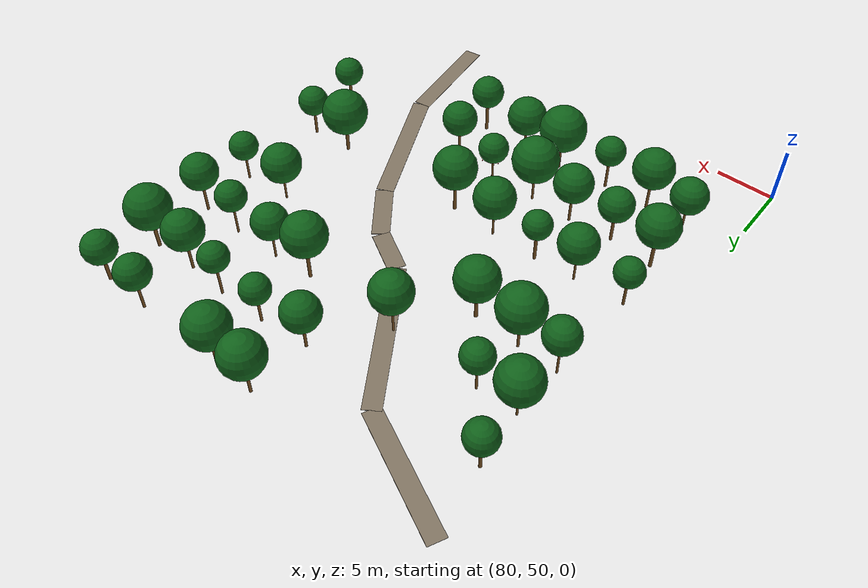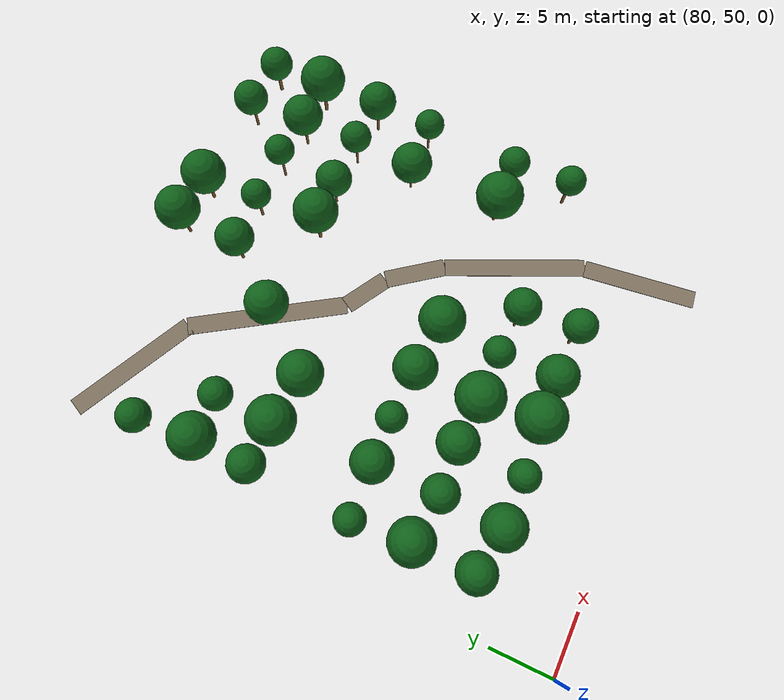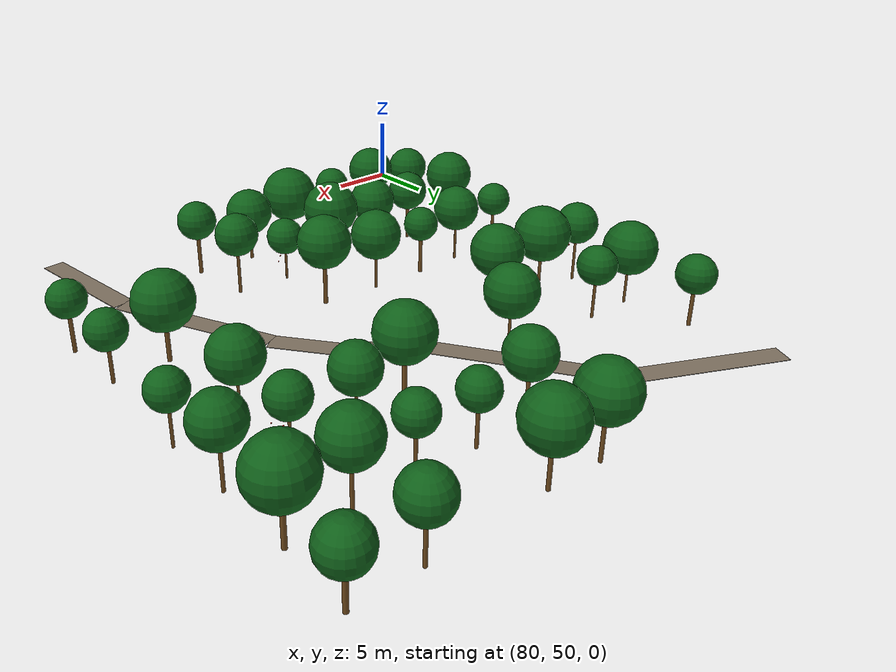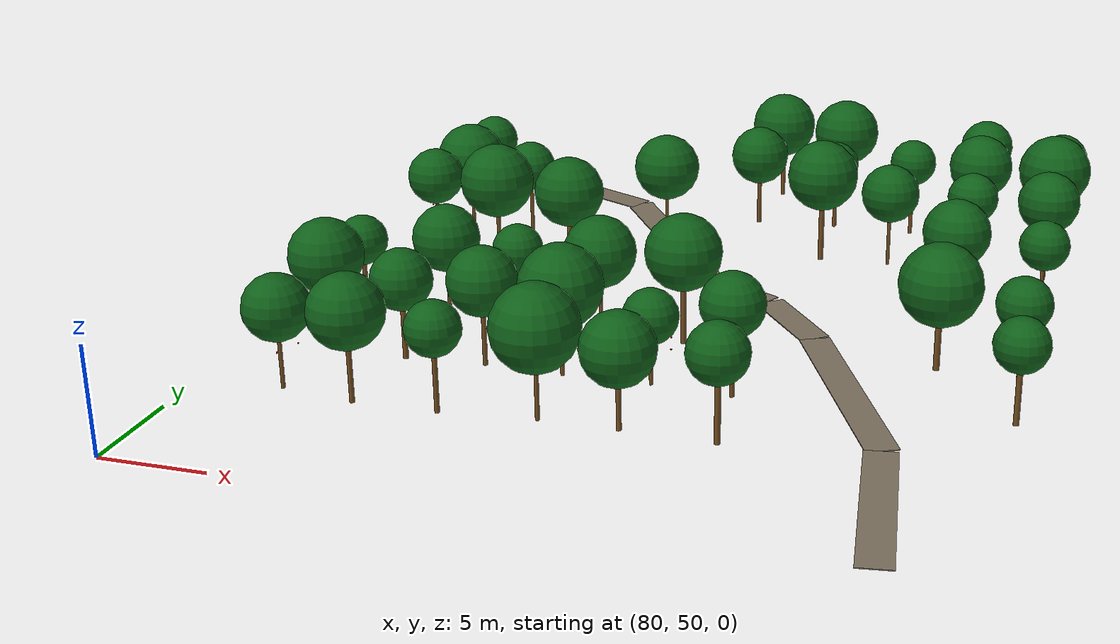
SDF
<sdf version="1.9">
 <world name="cheongsong_orchard">
  <model name="road_39">
   <static>true</static>
   <pose>111.3 54.4 0.02 0 0 1.7000</pose>
   <link name="link">
    <collision name="collision">
     <geometry><box><size>9.3 1.5 0.04</size></box></geometry>
     <surface><friction><ode><mu>0.9</mu><mu2>0.9</mu2></ode></friction></surface>
    </collision>
    <visual name="visual">
     <geometry><box><size>9.3 1.5 0.04</size></box></geometry>
     <material><ambient>0.4 0.35 0.28 1</ambient><diffuse>0.5 0.45 0.38 1</diffuse></material>
    </visual>
   </link>
  </model>
  <model name="road_40">
   <static>true</static>
   <pose>108.3 64.4 0.02 0 0 2.0023</pose>
   <link name="link">
    <collision name="collision">
     <geometry><box><size>11.8 1.5 0.04</size></box></geometry>
     <surface><friction><ode><mu>0.9</mu><mu2>0.9</mu2></ode></friction></surface>
    </collision>
    <visual name="visual">
     <geometry><box><size>11.8 1.5 0.04</size></box></geometry>
     <material><ambient>0.4 0.35 0.28 1</ambient><diffuse>0.5 0.45 0.38 1</diffuse></material>
    </visual>
   </link>
  </model>
  <model name="road_41">
   <static>true</static>
   <pose>104.3 71.8 0.02 0 0 2.2252</pose>
   <link name="link">
    <collision name="collision">
     <geometry><box><size>5.1 1.5 0.04</size></box></geometry>
     <surface><friction><ode><mu>0.9</mu><mu2>0.9</mu2></ode></friction></surface>
    </collision>
    <visual name="visual">
     <geometry><box><size>5.1 1.5 0.04</size></box></geometry>
     <material><ambient>0.4 0.35 0.28 1</ambient><diffuse>0.5 0.45 0.38 1</diffuse></material>
    </visual>
   </link>
  </model>
  <model name="road_42">
   <static>true</static>
   <pose>101.0 74.8 0.02 0 0 2.6209</pose>
   <link name="link">
    <collision name="collision">
     <geometry><box><size>3.9 1.5 0.04</size></box></geometry>
     <surface><friction><ode><mu>0.9</mu><mu2>0.9</mu2></ode></friction></surface>
    </collision>
    <visual name="visual">
     <geometry><box><size>3.9 1.5 0.04</size></box></geometry>
     <material><ambient>0.4 0.35 0.28 1</ambient><diffuse>0.5 0.45 0.38 1</diffuse></material>
    </visual>
   </link>
  </model>
  <model name="road_43">
   <static>true</static>
   <pose>95.7 81.3 0.02 0 0 2.1487</pose>
   <link name="link">
    <collision name="collision">
     <geometry><box><size>13.2 1.5 0.04</size></box></geometry>
     <surface><friction><ode><mu>0.9</mu><mu2>0.9</mu2></ode></friction></surface>
    </collision>
    <visual name="visual">
     <geometry><box><size>13.2 1.5 0.04</size></box></geometry>
     <material><ambient>0.4 0.35 0.28 1</ambient><diffuse>0.5 0.45 0.38 1</diffuse></material>
    </visual>
   </link>
  </model>
  <model name="road_44">
   <static>true</static>
   <pose>87.3 89.1 0.02 0 0 2.6935</pose>
   <link name="link">
    <collision name="collision">
     <geometry><box><size>10.8 1.5 0.04</size></box></geometry>
     <surface><friction><ode><mu>0.9</mu><mu2>0.9</mu2></ode></friction></surface>
    </collision>
    <visual name="visual">
     <geometry><box><size>10.8 1.5 0.04</size></box></geometry>
     <material><ambient>0.4 0.35 0.28 1</ambient><diffuse>0.5 0.45 0.38 1</diffuse></material>
    </visual>
   </link>
  </model>
  <model name="apple_tree_1850">
   <static>true</static>
   <pose>84.10 58.10 0 0 0 0</pose>
   <link name="link">
    <collision name="trunk_col">
     <pose>0 0 1.17 0 0 0</pose>
     <geometry><cylinder><radius>0.091</radius><length>2.33</length></cylinder></geometry>
    </collision>
    <visual name="trunk_vis">
     <pose>0 0 1.17 0 0 0</pose>
     <geometry><cylinder><radius>0.091</radius><length>2.33</length></cylinder></geometry>
     <material><ambient>0.35 0.22 0.08 1</ambient><diffuse>0.45 0.30 0.12 1</diffuse></material>
    </visual>
    <collision name="canopy_col">
     <pose>0 0 3.87 0 0 0</pose>
     <geometry><sphere><radius>1.54</radius></sphere></geometry>
    </collision>
    <visual name="canopy_vis">
     <pose>0 0 3.87 0 0 0</pose>
     <geometry><sphere><radius>1.54</radius></sphere></geometry>
     <material><ambient>0.04 0.28 0.06 1</ambient><diffuse>0.06 0.38 0.10 1</diffuse></material>
    </visual>
   </link>
  </model>
  <model name="apple_tree_1851">
   <static>true</static>
   <pose>87.70 57.57 0 0 0 0</pose>
   <link name="link">
    <collision name="trunk_col">
     <pose>0 0 1.28 0 0 0</pose>
     <geometry><cylinder><radius>0.113</radius><length>2.56</length></cylinder></geometry>
    </collision>
    <visual name="trunk_vis">
     <pose>0 0 1.28 0 0 0</pose>
     <geometry><cylinder><radius>0.113</radius><length>2.56</length></cylinder></geometry>
     <material><ambient>0.35 0.22 0.08 1</ambient><diffuse>0.45 0.30 0.12 1</diffuse></material>
    </visual>
    <collision name="canopy_col">
     <pose>0 0 4.29 0 0 0</pose>
     <geometry><sphere><radius>1.73</radius></sphere></geometry>
    </collision>
    <visual name="canopy_vis">
     <pose>0 0 4.29 0 0 0</pose>
     <geometry><sphere><radius>1.73</radius></sphere></geometry>
     <material><ambient>0.04 0.28 0.06 1</ambient><diffuse>0.06 0.38 0.10 1</diffuse></material>
    </visual>
   </link>
  </model>
  <model name="apple_tree_1852">
   <static>true</static>
   <pose>91.69 57.59 0 0 0 0</pose>
   <link name="link">
    <collision name="trunk_col">
     <pose>0 0 1.34 0 0 0</pose>
     <geometry><cylinder><radius>0.112</radius><length>2.67</length></cylinder></geometry>
    </collision>
    <visual name="trunk_vis">
     <pose>0 0 1.34 0 0 0</pose>
     <geometry><cylinder><radius>0.112</radius><length>2.67</length></cylinder></geometry>
     <material><ambient>0.35 0.22 0.08 1</ambient><diffuse>0.45 0.30 0.12 1</diffuse></material>
    </visual>
    <collision name="canopy_col">
     <pose>0 0 3.93 0 0 0</pose>
     <geometry><sphere><radius>1.26</radius></sphere></geometry>
    </collision>
    <visual name="canopy_vis">
     <pose>0 0 3.93 0 0 0</pose>
     <geometry><sphere><radius>1.26</radius></sphere></geometry>
     <material><ambient>0.04 0.28 0.06 1</ambient><diffuse>0.06 0.38 0.10 1</diffuse></material>
    </visual>
   </link>
  </model>
  <model name="apple_tree_1853">
   <static>true</static>
   <pose>96.10 58.06 0 0 0 0</pose>
   <link name="link">
    <collision name="trunk_col">
     <pose>0 0 1.14 0 0 0</pose>
     <geometry><cylinder><radius>0.099</radius><length>2.28</length></cylinder></geometry>
    </collision>
    <visual name="trunk_vis">
     <pose>0 0 1.14 0 0 0</pose>
     <geometry><cylinder><radius>0.099</radius><length>2.28</length></cylinder></geometry>
     <material><ambient>0.35 0.22 0.08 1</ambient><diffuse>0.45 0.30 0.12 1</diffuse></material>
    </visual>
    <collision name="canopy_col">
     <pose>0 0 4.27 0 0 0</pose>
     <geometry><sphere><radius>1.99</radius></sphere></geometry>
    </collision>
    <visual name="canopy_vis">
     <pose>0 0 4.27 0 0 0</pose>
     <geometry><sphere><radius>1.99</radius></sphere></geometry>
     <material><ambient>0.04 0.28 0.06 1</ambient><diffuse>0.06 0.38 0.10 1</diffuse></material>
    </visual>
   </link>
  </model>
  <model name="apple_tree_1854">
   <static>true</static>
   <pose>99.74 58.05 0 0 0 0</pose>
   <link name="link">
    <collision name="trunk_col">
     <pose>0 0 1.03 0 0 0</pose>
     <geometry><cylinder><radius>0.113</radius><length>2.06</length></cylinder></geometry>
    </collision>
    <visual name="trunk_vis">
     <pose>0 0 1.03 0 0 0</pose>
     <geometry><cylinder><radius>0.113</radius><length>2.06</length></cylinder></geometry>
     <material><ambient>0.35 0.22 0.08 1</ambient><diffuse>0.45 0.30 0.12 1</diffuse></material>
    </visual>
    <collision name="canopy_col">
     <pose>0 0 3.73 0 0 0</pose>
     <geometry><sphere><radius>1.67</radius></sphere></geometry>
    </collision>
    <visual name="canopy_vis">
     <pose>0 0 3.73 0 0 0</pose>
     <geometry><sphere><radius>1.67</radius></sphere></geometry>
     <material><ambient>0.04 0.28 0.06 1</ambient><diffuse>0.06 0.38 0.10 1</diffuse></material>
    </visual>
   </link>
  </model>
  <model name="apple_tree_1855">
   <static>true</static>
   <pose>104.04 57.93 0 0 0 0</pose>
   <link name="link">
    <collision name="trunk_col">
     <pose>0 0 1.36 0 0 0</pose>
     <geometry><cylinder><radius>0.133</radius><length>2.72</length></cylinder></geometry>
    </collision>
    <visual name="trunk_vis">
     <pose>0 0 1.36 0 0 0</pose>
     <geometry><cylinder><radius>0.133</radius><length>2.72</length></cylinder></geometry>
     <material><ambient>0.35 0.22 0.08 1</ambient><diffuse>0.45 0.30 0.12 1</diffuse></material>
    </visual>
    <collision name="canopy_col">
     <pose>0 0 4.10 0 0 0</pose>
     <geometry><sphere><radius>1.38</radius></sphere></geometry>
    </collision>
    <visual name="canopy_vis">
     <pose>0 0 4.10 0 0 0</pose>
     <geometry><sphere><radius>1.38</radius></sphere></geometry>
     <material><ambient>0.04 0.28 0.06 1</ambient><diffuse>0.06 0.38 0.10 1</diffuse></material>
    </visual>
   </link>
  </model>
  <model name="apple_tree_1906">
   <static>true</static>
   <pose>84.06 63.06 0 0 0 0</pose>
   <link name="link">
    <collision name="trunk_col">
     <pose>0 0 1.37 0 0 0</pose>
     <geometry><cylinder><radius>0.144</radius><length>2.74</length></cylinder></geometry>
    </collision>
    <visual name="trunk_vis">
     <pose>0 0 1.37 0 0 0</pose>
     <geometry><cylinder><radius>0.144</radius><length>2.74</length></cylinder></geometry>
     <material><ambient>0.35 0.22 0.08 1</ambient><diffuse>0.45 0.30 0.12 1</diffuse></material>
    </visual>
    <collision name="canopy_col">
     <pose>0 0 4.51 0 0 0</pose>
     <geometry><sphere><radius>1.77</radius></sphere></geometry>
    </collision>
    <visual name="canopy_vis">
     <pose>0 0 4.51 0 0 0</pose>
     <geometry><sphere><radius>1.77</radius></sphere></geometry>
     <material><ambient>0.04 0.28 0.06 1</ambient><diffuse>0.06 0.38 0.10 1</diffuse></material>
    </visual>
   </link>
  </model>
  <model name="apple_tree_1907">
   <static>true</static>
   <pose>88.01 62.57 0 0 0 0</pose>
   <link name="link">
    <collision name="trunk_col">
     <pose>0 0 1.23 0 0 0</pose>
     <geometry><cylinder><radius>0.126</radius><length>2.46</length></cylinder></geometry>
    </collision>
    <visual name="trunk_vis">
     <pose>0 0 1.23 0 0 0</pose>
     <geometry><cylinder><radius>0.126</radius><length>2.46</length></cylinder></geometry>
     <material><ambient>0.35 0.22 0.08 1</ambient><diffuse>0.45 0.30 0.12 1</diffuse></material>
    </visual>
    <collision name="canopy_col">
     <pose>0 0 3.91 0 0 0</pose>
     <geometry><sphere><radius>1.46</radius></sphere></geometry>
    </collision>
    <visual name="canopy_vis">
     <pose>0 0 3.91 0 0 0</pose>
     <geometry><sphere><radius>1.46</radius></sphere></geometry>
     <material><ambient>0.04 0.28 0.06 1</ambient><diffuse>0.06 0.38 0.10 1</diffuse></material>
    </visual>
   </link>
  </model>
  <model name="apple_tree_1908">
   <static>true</static>
   <pose>91.83 62.86 0 0 0 0</pose>
   <link name="link">
    <collision name="trunk_col">
     <pose>0 0 1.23 0 0 0</pose>
     <geometry><cylinder><radius>0.108</radius><length>2.47</length></cylinder></geometry>
    </collision>
    <visual name="trunk_vis">
     <pose>0 0 1.23 0 0 0</pose>
     <geometry><cylinder><radius>0.108</radius><length>2.47</length></cylinder></geometry>
     <material><ambient>0.35 0.22 0.08 1</ambient><diffuse>0.45 0.30 0.12 1</diffuse></material>
    </visual>
    <collision name="canopy_col">
     <pose>0 0 4.11 0 0 0</pose>
     <geometry><sphere><radius>1.64</radius></sphere></geometry>
    </collision>
    <visual name="canopy_vis">
     <pose>0 0 4.11 0 0 0</pose>
     <geometry><sphere><radius>1.64</radius></sphere></geometry>
     <material><ambient>0.04 0.28 0.06 1</ambient><diffuse>0.06 0.38 0.10 1</diffuse></material>
    </visual>
   </link>
  </model>
  <model name="apple_tree_1909">
   <static>true</static>
   <pose>95.63 62.70 0 0 0 0</pose>
   <link name="link">
    <collision name="trunk_col">
     <pose>0 0 1.19 0 0 0</pose>
     <geometry><cylinder><radius>0.094</radius><length>2.39</length></cylinder></geometry>
    </collision>
    <visual name="trunk_vis">
     <pose>0 0 1.19 0 0 0</pose>
     <geometry><cylinder><radius>0.094</radius><length>2.39</length></cylinder></geometry>
     <material><ambient>0.35 0.22 0.08 1</ambient><diffuse>0.45 0.30 0.12 1</diffuse></material>
    </visual>
    <collision name="canopy_col">
     <pose>0 0 4.34 0 0 0</pose>
     <geometry><sphere><radius>1.96</radius></sphere></geometry>
    </collision>
    <visual name="canopy_vis">
     <pose>0 0 4.34 0 0 0</pose>
     <geometry><sphere><radius>1.96</radius></sphere></geometry>
     <material><ambient>0.04 0.28 0.06 1</ambient><diffuse>0.06 0.38 0.10 1</diffuse></material>
    </visual>
   </link>
  </model>
  <model name="apple_tree_1910">
   <static>true</static>
   <pose>99.77 62.77 0 0 0 0</pose>
   <link name="link">
    <collision name="trunk_col">
     <pose>0 0 1.02 0 0 0</pose>
     <geometry><cylinder><radius>0.082</radius><length>2.03</length></cylinder></geometry>
    </collision>
    <visual name="trunk_vis">
     <pose>0 0 1.02 0 0 0</pose>
     <geometry><cylinder><radius>0.082</radius><length>2.03</length></cylinder></geometry>
     <material><ambient>0.35 0.22 0.08 1</ambient><diffuse>0.45 0.30 0.12 1</diffuse></material>
    </visual>
    <collision name="canopy_col">
     <pose>0 0 3.31 0 0 0</pose>
     <geometry><sphere><radius>1.28</radius></sphere></geometry>
    </collision>
    <visual name="canopy_vis">
     <pose>0 0 3.31 0 0 0</pose>
     <geometry><sphere><radius>1.28</radius></sphere></geometry>
     <material><ambient>0.04 0.28 0.06 1</ambient><diffuse>0.06 0.38 0.10 1</diffuse></material>
    </visual>
   </link>
  </model>
  <model name="apple_tree_1911">
   <static>true</static>
   <pose>103.54 62.53 0 0 0 0</pose>
   <link name="link">
    <collision name="trunk_col">
     <pose>0 0 1.45 0 0 0</pose>
     <geometry><cylinder><radius>0.107</radius><length>2.89</length></cylinder></geometry>
    </collision>
    <visual name="trunk_vis">
     <pose>0 0 1.45 0 0 0</pose>
     <geometry><cylinder><radius>0.107</radius><length>2.89</length></cylinder></geometry>
     <material><ambient>0.35 0.22 0.08 1</ambient><diffuse>0.45 0.30 0.12 1</diffuse></material>
    </visual>
    <collision name="canopy_col">
     <pose>0 0 4.37 0 0 0</pose>
     <geometry><sphere><radius>1.48</radius></sphere></geometry>
    </collision>
    <visual name="canopy_vis">
     <pose>0 0 4.37 0 0 0</pose>
     <geometry><sphere><radius>1.48</radius></sphere></geometry>
     <material><ambient>0.04 0.28 0.06 1</ambient><diffuse>0.06 0.38 0.10 1</diffuse></material>
    </visual>
   </link>
  </model>
  <model name="apple_tree_1912">
   <static>true</static>
   <pose>115.82 63.02 0 0 0 0</pose>
   <link name="link">
    <collision name="trunk_col">
     <pose>0 0 1.22 0 0 0</pose>
     <geometry><cylinder><radius>0.128</radius><length>2.45</length></cylinder></geometry>
    </collision>
    <visual name="trunk_vis">
     <pose>0 0 1.22 0 0 0</pose>
     <geometry><cylinder><radius>0.128</radius><length>2.45</length></cylinder></geometry>
     <material><ambient>0.35 0.22 0.08 1</ambient><diffuse>0.45 0.30 0.12 1</diffuse></material>
    </visual>
    <collision name="canopy_col">
     <pose>0 0 3.68 0 0 0</pose>
     <geometry><sphere><radius>1.24</radius></sphere></geometry>
    </collision>
    <visual name="canopy_vis">
     <pose>0 0 3.68 0 0 0</pose>
     <geometry><sphere><radius>1.24</radius></sphere></geometry>
     <material><ambient>0.04 0.28 0.06 1</ambient><diffuse>0.06 0.38 0.10 1</diffuse></material>
    </visual>
   </link>
  </model>
  <model name="apple_tree_1963">
   <static>true</static>
   <pose>83.65 67.69 0 0 0 0</pose>
   <link name="link">
    <collision name="trunk_col">
     <pose>0 0 1.19 0 0 0</pose>
     <geometry><cylinder><radius>0.110</radius><length>2.39</length></cylinder></geometry>
    </collision>
    <visual name="trunk_vis">
     <pose>0 0 1.19 0 0 0</pose>
     <geometry><cylinder><radius>0.110</radius><length>2.39</length></cylinder></geometry>
     <material><ambient>0.35 0.22 0.08 1</ambient><diffuse>0.45 0.30 0.12 1</diffuse></material>
    </visual>
    <collision name="canopy_col">
     <pose>0 0 3.62 0 0 0</pose>
     <geometry><sphere><radius>1.23</radius></sphere></geometry>
    </collision>
    <visual name="canopy_vis">
     <pose>0 0 3.62 0 0 0</pose>
     <geometry><sphere><radius>1.23</radius></sphere></geometry>
     <material><ambient>0.04 0.28 0.06 1</ambient><diffuse>0.06 0.38 0.10 1</diffuse></material>
    </visual>
   </link>
  </model>
  <model name="apple_tree_1964">
   <static>true</static>
   <pose>87.96 67.97 0 0 0 0</pose>
   <link name="link">
    <collision name="trunk_col">
     <pose>0 0 1.20 0 0 0</pose>
     <geometry><cylinder><radius>0.086</radius><length>2.40</length></cylinder></geometry>
    </collision>
    <visual name="trunk_vis">
     <pose>0 0 1.20 0 0 0</pose>
     <geometry><cylinder><radius>0.086</radius><length>2.40</length></cylinder></geometry>
     <material><ambient>0.35 0.22 0.08 1</ambient><diffuse>0.45 0.30 0.12 1</diffuse></material>
    </visual>
    <collision name="canopy_col">
     <pose>0 0 4.04 0 0 0</pose>
     <geometry><sphere><radius>1.64</radius></sphere></geometry>
    </collision>
    <visual name="canopy_vis">
     <pose>0 0 4.04 0 0 0</pose>
     <geometry><sphere><radius>1.64</radius></sphere></geometry>
     <material><ambient>0.04 0.28 0.06 1</ambient><diffuse>0.06 0.38 0.10 1</diffuse></material>
    </visual>
   </link>
  </model>
  <model name="apple_tree_1965">
   <static>true</static>
   <pose>91.59 68.10 0 0 0 0</pose>
   <link name="link">
    <collision name="trunk_col">
     <pose>0 0 1.28 0 0 0</pose>
     <geometry><cylinder><radius>0.131</radius><length>2.56</length></cylinder></geometry>
    </collision>
    <visual name="trunk_vis">
     <pose>0 0 1.28 0 0 0</pose>
     <geometry><cylinder><radius>0.131</radius><length>2.56</length></cylinder></geometry>
     <material><ambient>0.35 0.22 0.08 1</ambient><diffuse>0.45 0.30 0.12 1</diffuse></material>
    </visual>
    <collision name="canopy_col">
     <pose>0 0 3.77 0 0 0</pose>
     <geometry><sphere><radius>1.22</radius></sphere></geometry>
    </collision>
    <visual name="canopy_vis">
     <pose>0 0 3.77 0 0 0</pose>
     <geometry><sphere><radius>1.22</radius></sphere></geometry>
     <material><ambient>0.04 0.28 0.06 1</ambient><diffuse>0.06 0.38 0.10 1</diffuse></material>
    </visual>
   </link>
  </model>
  <model name="apple_tree_1966">
   <static>true</static>
   <pose>95.74 68.05 0 0 0 0</pose>
   <link name="link">
    <collision name="trunk_col">
     <pose>0 0 1.16 0 0 0</pose>
     <geometry><cylinder><radius>0.083</radius><length>2.32</length></cylinder></geometry>
    </collision>
    <visual name="trunk_vis">
     <pose>0 0 1.16 0 0 0</pose>
     <geometry><cylinder><radius>0.083</radius><length>2.32</length></cylinder></geometry>
     <material><ambient>0.35 0.22 0.08 1</ambient><diffuse>0.45 0.30 0.12 1</diffuse></material>
    </visual>
    <collision name="canopy_col">
     <pose>0 0 4.06 0 0 0</pose>
     <geometry><sphere><radius>1.74</radius></sphere></geometry>
    </collision>
    <visual name="canopy_vis">
     <pose>0 0 4.06 0 0 0</pose>
     <geometry><sphere><radius>1.74</radius></sphere></geometry>
     <material><ambient>0.04 0.28 0.06 1</ambient><diffuse>0.06 0.38 0.10 1</diffuse></material>
    </visual>
   </link>
  </model>
  <model name="apple_tree_1967">
   <static>true</static>
   <pose>99.93 67.71 0 0 0 0</pose>
   <link name="link">
    <collision name="trunk_col">
     <pose>0 0 1.37 0 0 0</pose>
     <geometry><cylinder><radius>0.140</radius><length>2.73</length></cylinder></geometry>
    </collision>
    <visual name="trunk_vis">
     <pose>0 0 1.37 0 0 0</pose>
     <geometry><cylinder><radius>0.140</radius><length>2.73</length></cylinder></geometry>
     <material><ambient>0.35 0.22 0.08 1</ambient><diffuse>0.45 0.30 0.12 1</diffuse></material>
    </visual>
    <collision name="canopy_col">
     <pose>0 0 4.56 0 0 0</pose>
     <geometry><sphere><radius>1.83</radius></sphere></geometry>
    </collision>
    <visual name="canopy_vis">
     <pose>0 0 4.56 0 0 0</pose>
     <geometry><sphere><radius>1.83</radius></sphere></geometry>
     <material><ambient>0.04 0.28 0.06 1</ambient><diffuse>0.06 0.38 0.10 1</diffuse></material>
    </visual>
   </link>
  </model>
  <model name="apple_tree_1968">
   <static>true</static>
   <pose>111.84 67.80 0 0 0 0</pose>
   <link name="link">
    <collision name="trunk_col">
     <pose>0 0 1.11 0 0 0</pose>
     <geometry><cylinder><radius>0.144</radius><length>2.21</length></cylinder></geometry>
    </collision>
    <visual name="trunk_vis">
     <pose>0 0 1.11 0 0 0</pose>
     <geometry><cylinder><radius>0.144</radius><length>2.21</length></cylinder></geometry>
     <material><ambient>0.35 0.22 0.08 1</ambient><diffuse>0.45 0.30 0.12 1</diffuse></material>
    </visual>
    <collision name="canopy_col">
     <pose>0 0 4.15 0 0 0</pose>
     <geometry><sphere><radius>1.94</radius></sphere></geometry>
    </collision>
    <visual name="canopy_vis">
     <pose>0 0 4.15 0 0 0</pose>
     <geometry><sphere><radius>1.94</radius></sphere></geometry>
     <material><ambient>0.04 0.28 0.06 1</ambient><diffuse>0.06 0.38 0.10 1</diffuse></material>
    </visual>
   </link>
  </model>
  <model name="apple_tree_1969">
   <static>true</static>
   <pose>115.56 67.91 0 0 0 0</pose>
   <link name="link">
    <collision name="trunk_col">
     <pose>0 0 1.13 0 0 0</pose>
     <geometry><cylinder><radius>0.116</radius><length>2.26</length></cylinder></geometry>
    </collision>
    <visual name="trunk_vis">
     <pose>0 0 1.13 0 0 0</pose>
     <geometry><cylinder><radius>0.116</radius><length>2.26</length></cylinder></geometry>
     <material><ambient>0.35 0.22 0.08 1</ambient><diffuse>0.45 0.30 0.12 1</diffuse></material>
    </visual>
    <collision name="canopy_col">
     <pose>0 0 3.55 0 0 0</pose>
     <geometry><sphere><radius>1.29</radius></sphere></geometry>
    </collision>
    <visual name="canopy_vis">
     <pose>0 0 3.55 0 0 0</pose>
     <geometry><sphere><radius>1.29</radius></sphere></geometry>
     <material><ambient>0.04 0.28 0.06 1</ambient><diffuse>0.06 0.38 0.10 1</diffuse></material>
    </visual>
   </link>
  </model>
  <model name="apple_tree_2020">
   <static>true</static>
   <pose>83.97 76.08 0 0 0 0</pose>
   <link name="link">
    <collision name="trunk_col">
     <pose>0 0 1.44 0 0 0</pose>
     <geometry><cylinder><radius>0.090</radius><length>2.88</length></cylinder></geometry>
    </collision>
    <visual name="trunk_vis">
     <pose>0 0 1.44 0 0 0</pose>
     <geometry><cylinder><radius>0.090</radius><length>2.88</length></cylinder></geometry>
     <material><ambient>0.35 0.22 0.08 1</ambient><diffuse>0.45 0.30 0.12 1</diffuse></material>
    </visual>
    <collision name="canopy_col">
     <pose>0 0 4.34 0 0 0</pose>
     <geometry><sphere><radius>1.46</radius></sphere></geometry>
    </collision>
    <visual name="canopy_vis">
     <pose>0 0 4.34 0 0 0</pose>
     <geometry><sphere><radius>1.46</radius></sphere></geometry>
     <material><ambient>0.04 0.28 0.06 1</ambient><diffuse>0.06 0.38 0.10 1</diffuse></material>
    </visual>
   </link>
  </model>
  <model name="apple_tree_2021">
   <static>true</static>
   <pose>87.51 75.93 0 0 0 0</pose>
   <link name="link">
    <collision name="trunk_col">
     <pose>0 0 1.26 0 0 0</pose>
     <geometry><cylinder><radius>0.106</radius><length>2.52</length></cylinder></geometry>
    </collision>
    <visual name="trunk_vis">
     <pose>0 0 1.26 0 0 0</pose>
     <geometry><cylinder><radius>0.106</radius><length>2.52</length></cylinder></geometry>
     <material><ambient>0.35 0.22 0.08 1</ambient><diffuse>0.45 0.30 0.12 1</diffuse></material>
    </visual>
    <collision name="canopy_col">
     <pose>0 0 4.44 0 0 0</pose>
     <geometry><sphere><radius>1.92</radius></sphere></geometry>
    </collision>
    <visual name="canopy_vis">
     <pose>0 0 4.44 0 0 0</pose>
     <geometry><sphere><radius>1.92</radius></sphere></geometry>
     <material><ambient>0.04 0.28 0.06 1</ambient><diffuse>0.06 0.38 0.10 1</diffuse></material>
    </visual>
   </link>
  </model>
  <model name="apple_tree_2022">
   <static>true</static>
   <pose>91.61 75.64 0 0 0 0</pose>
   <link name="link">
    <collision name="trunk_col">
     <pose>0 0 1.24 0 0 0</pose>
     <geometry><cylinder><radius>0.144</radius><length>2.47</length></cylinder></geometry>
    </collision>
    <visual name="trunk_vis">
     <pose>0 0 1.24 0 0 0</pose>
     <geometry><cylinder><radius>0.144</radius><length>2.47</length></cylinder></geometry>
     <material><ambient>0.35 0.22 0.08 1</ambient><diffuse>0.45 0.30 0.12 1</diffuse></material>
    </visual>
    <collision name="canopy_col">
     <pose>0 0 4.27 0 0 0</pose>
     <geometry><sphere><radius>1.80</radius></sphere></geometry>
    </collision>
    <visual name="canopy_vis">
     <pose>0 0 4.27 0 0 0</pose>
     <geometry><sphere><radius>1.80</radius></sphere></geometry>
     <material><ambient>0.04 0.28 0.06 1</ambient><diffuse>0.06 0.38 0.10 1</diffuse></material>
    </visual>
   </link>
  </model>
  <model name="apple_tree_2023">
   <static>true</static>
   <pose>111.67 75.58 0 0 0 0</pose>
   <link name="link">
    <collision name="trunk_col">
     <pose>0 0 1.11 0 0 0</pose>
     <geometry><cylinder><radius>0.082</radius><length>2.23</length></cylinder></geometry>
    </collision>
    <visual name="trunk_vis">
     <pose>0 0 1.11 0 0 0</pose>
     <geometry><cylinder><radius>0.082</radius><length>2.23</length></cylinder></geometry>
     <material><ambient>0.35 0.22 0.08 1</ambient><diffuse>0.45 0.30 0.12 1</diffuse></material>
    </visual>
    <collision name="canopy_col">
     <pose>0 0 3.91 0 0 0</pose>
     <geometry><sphere><radius>1.68</radius></sphere></geometry>
    </collision>
    <visual name="canopy_vis">
     <pose>0 0 3.91 0 0 0</pose>
     <geometry><sphere><radius>1.68</radius></sphere></geometry>
     <material><ambient>0.04 0.28 0.06 1</ambient><diffuse>0.06 0.38 0.10 1</diffuse></material>
    </visual>
   </link>
  </model>
  <model name="apple_tree_2024">
   <static>true</static>
   <pose>115.90 75.82 0 0 0 0</pose>
   <link name="link">
    <collision name="trunk_col">
     <pose>0 0 1.17 0 0 0</pose>
     <geometry><cylinder><radius>0.093</radius><length>2.35</length></cylinder></geometry>
    </collision>
    <visual name="trunk_vis">
     <pose>0 0 1.17 0 0 0</pose>
     <geometry><cylinder><radius>0.093</radius><length>2.35</length></cylinder></geometry>
     <material><ambient>0.35 0.22 0.08 1</ambient><diffuse>0.45 0.30 0.12 1</diffuse></material>
    </visual>
    <collision name="canopy_col">
     <pose>0 0 3.58 0 0 0</pose>
     <geometry><sphere><radius>1.23</radius></sphere></geometry>
    </collision>
    <visual name="canopy_vis">
     <pose>0 0 3.58 0 0 0</pose>
     <geometry><sphere><radius>1.23</radius></sphere></geometry>
     <material><ambient>0.04 0.28 0.06 1</ambient><diffuse>0.06 0.38 0.10 1</diffuse></material>
    </visual>
   </link>
  </model>
  <model name="apple_tree_2075">
   <static>true</static>
   <pose>84.11 80.73 0 0 0 0</pose>
   <link name="link">
    <collision name="trunk_col">
     <pose>0 0 1.10 0 0 0</pose>
     <geometry><cylinder><radius>0.085</radius><length>2.21</length></cylinder></geometry>
    </collision>
    <visual name="trunk_vis">
     <pose>0 0 1.10 0 0 0</pose>
     <geometry><cylinder><radius>0.085</radius><length>2.21</length></cylinder></geometry>
     <material><ambient>0.35 0.22 0.08 1</ambient><diffuse>0.45 0.30 0.12 1</diffuse></material>
    </visual>
    <collision name="canopy_col">
     <pose>0 0 4.04 0 0 0</pose>
     <geometry><sphere><radius>1.83</radius></sphere></geometry>
    </collision>
    <visual name="canopy_vis">
     <pose>0 0 4.04 0 0 0</pose>
     <geometry><sphere><radius>1.83</radius></sphere></geometry>
     <material><ambient>0.04 0.28 0.06 1</ambient><diffuse>0.06 0.38 0.10 1</diffuse></material>
    </visual>
   </link>
  </model>
  <model name="apple_tree_2076">
   <static>true</static>
   <pose>87.62 80.76 0 0 0 0</pose>
   <link name="link">
    <collision name="trunk_col">
     <pose>0 0 1.25 0 0 0</pose>
     <geometry><cylinder><radius>0.096</radius><length>2.50</length></cylinder></geometry>
    </collision>
    <visual name="trunk_vis">
     <pose>0 0 1.25 0 0 0</pose>
     <geometry><cylinder><radius>0.096</radius><length>2.50</length></cylinder></geometry>
     <material><ambient>0.35 0.22 0.08 1</ambient><diffuse>0.45 0.30 0.12 1</diffuse></material>
    </visual>
    <collision name="canopy_col">
     <pose>0 0 3.81 0 0 0</pose>
     <geometry><sphere><radius>1.32</radius></sphere></geometry>
    </collision>
    <visual name="canopy_vis">
     <pose>0 0 3.81 0 0 0</pose>
     <geometry><sphere><radius>1.32</radius></sphere></geometry>
     <material><ambient>0.04 0.28 0.06 1</ambient><diffuse>0.06 0.38 0.10 1</diffuse></material>
    </visual>
   </link>
  </model>
  <model name="apple_tree_2077">
   <static>true</static>
   <pose>95.52 80.55 0 0 0 0</pose>
   <link name="link">
    <collision name="trunk_col">
     <pose>0 0 1.36 0 0 0</pose>
     <geometry><cylinder><radius>0.088</radius><length>2.72</length></cylinder></geometry>
    </collision>
    <visual name="trunk_vis">
     <pose>0 0 1.36 0 0 0</pose>
     <geometry><cylinder><radius>0.088</radius><length>2.72</length></cylinder></geometry>
     <material><ambient>0.35 0.22 0.08 1</ambient><diffuse>0.45 0.30 0.12 1</diffuse></material>
    </visual>
    <collision name="canopy_col">
     <pose>0 0 4.45 0 0 0</pose>
     <geometry><sphere><radius>1.73</radius></sphere></geometry>
    </collision>
    <visual name="canopy_vis">
     <pose>0 0 4.45 0 0 0</pose>
     <geometry><sphere><radius>1.73</radius></sphere></geometry>
     <material><ambient>0.04 0.28 0.06 1</ambient><diffuse>0.06 0.38 0.10 1</diffuse></material>
    </visual>
   </link>
  </model>
  <model name="apple_tree_2078">
   <static>true</static>
   <pose>104.04 80.59 0 0 0 0</pose>
   <link name="link">
    <collision name="trunk_col">
     <pose>0 0 1.42 0 0 0</pose>
     <geometry><cylinder><radius>0.140</radius><length>2.85</length></cylinder></geometry>
    </collision>
    <visual name="trunk_vis">
     <pose>0 0 1.42 0 0 0</pose>
     <geometry><cylinder><radius>0.140</radius><length>2.85</length></cylinder></geometry>
     <material><ambient>0.35 0.22 0.08 1</ambient><diffuse>0.45 0.30 0.12 1</diffuse></material>
    </visual>
    <collision name="canopy_col">
     <pose>0 0 4.69 0 0 0</pose>
     <geometry><sphere><radius>1.84</radius></sphere></geometry>
    </collision>
    <visual name="canopy_vis">
     <pose>0 0 4.69 0 0 0</pose>
     <geometry><sphere><radius>1.84</radius></sphere></geometry>
     <material><ambient>0.04 0.28 0.06 1</ambient><diffuse>0.06 0.38 0.10 1</diffuse></material>
    </visual>
   </link>
  </model>
  <model name="apple_tree_2079">
   <static>true</static>
   <pose>107.62 80.80 0 0 0 0</pose>
   <link name="link">
    <collision name="trunk_col">
     <pose>0 0 1.21 0 0 0</pose>
     <geometry><cylinder><radius>0.087</radius><length>2.42</length></cylinder></geometry>
    </collision>
    <visual name="trunk_vis">
     <pose>0 0 1.21 0 0 0</pose>
     <geometry><cylinder><radius>0.087</radius><length>2.42</length></cylinder></geometry>
     <material><ambient>0.35 0.22 0.08 1</ambient><diffuse>0.45 0.30 0.12 1</diffuse></material>
    </visual>
    <collision name="canopy_col">
     <pose>0 0 3.93 0 0 0</pose>
     <geometry><sphere><radius>1.51</radius></sphere></geometry>
    </collision>
    <visual name="canopy_vis">
     <pose>0 0 3.93 0 0 0</pose>
     <geometry><sphere><radius>1.51</radius></sphere></geometry>
     <material><ambient>0.04 0.28 0.06 1</ambient><diffuse>0.06 0.38 0.10 1</diffuse></material>
    </visual>
   </link>
  </model>
  <model name="apple_tree_2080">
   <static>true</static>
   <pose>111.89 80.84 0 0 0 0</pose>
   <link name="link">
    <collision name="trunk_col">
     <pose>0 0 1.37 0 0 0</pose>
     <geometry><cylinder><radius>0.090</radius><length>2.73</length></cylinder></geometry>
    </collision>
    <visual name="trunk_vis">
     <pose>0 0 1.37 0 0 0</pose>
     <geometry><cylinder><radius>0.090</radius><length>2.73</length></cylinder></geometry>
     <material><ambient>0.35 0.22 0.08 1</ambient><diffuse>0.45 0.30 0.12 1</diffuse></material>
    </visual>
    <collision name="canopy_col">
     <pose>0 0 4.04 0 0 0</pose>
     <geometry><sphere><radius>1.30</radius></sphere></geometry>
    </collision>
    <visual name="canopy_vis">
     <pose>0 0 4.04 0 0 0</pose>
     <geometry><sphere><radius>1.30</radius></sphere></geometry>
     <material><ambient>0.04 0.28 0.06 1</ambient><diffuse>0.06 0.38 0.10 1</diffuse></material>
    </visual>
   </link>
  </model>
  <model name="apple_tree_2081">
   <static>true</static>
   <pose>115.75 80.63 0 0 0 0</pose>
   <link name="link">
    <collision name="trunk_col">
     <pose>0 0 1.33 0 0 0</pose>
     <geometry><cylinder><radius>0.106</radius><length>2.66</length></cylinder></geometry>
    </collision>
    <visual name="trunk_vis">
     <pose>0 0 1.33 0 0 0</pose>
     <geometry><cylinder><radius>0.106</radius><length>2.66</length></cylinder></geometry>
     <material><ambient>0.35 0.22 0.08 1</ambient><diffuse>0.45 0.30 0.12 1</diffuse></material>
    </visual>
    <collision name="canopy_col">
     <pose>0 0 4.22 0 0 0</pose>
     <geometry><sphere><radius>1.56</radius></sphere></geometry>
    </collision>
    <visual name="canopy_vis">
     <pose>0 0 4.22 0 0 0</pose>
     <geometry><sphere><radius>1.56</radius></sphere></geometry>
     <material><ambient>0.04 0.28 0.06 1</ambient><diffuse>0.06 0.38 0.10 1</diffuse></material>
    </visual>
   </link>
  </model>
  <model name="apple_tree_2132">
   <static>true</static>
   <pose>83.63 85.52 0 0 0 0</pose>
   <link name="link">
    <collision name="trunk_col">
     <pose>0 0 1.19 0 0 0</pose>
     <geometry><cylinder><radius>0.125</radius><length>2.37</length></cylinder></geometry>
    </collision>
    <visual name="trunk_vis">
     <pose>0 0 1.19 0 0 0</pose>
     <geometry><cylinder><radius>0.125</radius><length>2.37</length></cylinder></geometry>
     <material><ambient>0.35 0.22 0.08 1</ambient><diffuse>0.45 0.30 0.12 1</diffuse></material>
    </visual>
    <collision name="canopy_col">
     <pose>0 0 3.69 0 0 0</pose>
     <geometry><sphere><radius>1.32</radius></sphere></geometry>
    </collision>
    <visual name="canopy_vis">
     <pose>0 0 3.69 0 0 0</pose>
     <geometry><sphere><radius>1.32</radius></sphere></geometry>
     <material><ambient>0.04 0.28 0.06 1</ambient><diffuse>0.06 0.38 0.10 1</diffuse></material>
    </visual>
   </link>
  </model>
  <model name="apple_tree_2133">
   <static>true</static>
   <pose>99.52 85.65 0 0 0 0</pose>
   <link name="link">
    <collision name="trunk_col">
     <pose>0 0 1.19 0 0 0</pose>
     <geometry><cylinder><radius>0.114</radius><length>2.38</length></cylinder></geometry>
    </collision>
    <visual name="trunk_vis">
     <pose>0 0 1.19 0 0 0</pose>
     <geometry><cylinder><radius>0.114</radius><length>2.38</length></cylinder></geometry>
     <material><ambient>0.35 0.22 0.08 1</ambient><diffuse>0.45 0.30 0.12 1</diffuse></material>
    </visual>
    <collision name="canopy_col">
     <pose>0 0 3.95 0 0 0</pose>
     <geometry><sphere><radius>1.57</radius></sphere></geometry>
    </collision>
    <visual name="canopy_vis">
     <pose>0 0 3.95 0 0 0</pose>
     <geometry><sphere><radius>1.57</radius></sphere></geometry>
     <material><ambient>0.04 0.28 0.06 1</ambient><diffuse>0.06 0.38 0.10 1</diffuse></material>
    </visual>
   </link>
  </model>
  <model name="apple_tree_2134">
   <static>true</static>
   <pose>103.79 86.04 0 0 0 0</pose>
   <link name="link">
    <collision name="trunk_col">
     <pose>0 0 1.20 0 0 0</pose>
     <geometry><cylinder><radius>0.109</radius><length>2.40</length></cylinder></geometry>
    </collision>
    <visual name="trunk_vis">
     <pose>0 0 1.20 0 0 0</pose>
     <geometry><cylinder><radius>0.109</radius><length>2.40</length></cylinder></geometry>
     <material><ambient>0.35 0.22 0.08 1</ambient><diffuse>0.45 0.30 0.12 1</diffuse></material>
    </visual>
    <collision name="canopy_col">
     <pose>0 0 3.64 0 0 0</pose>
     <geometry><sphere><radius>1.24</radius></sphere></geometry>
    </collision>
    <visual name="canopy_vis">
     <pose>0 0 3.64 0 0 0</pose>
     <geometry><sphere><radius>1.24</radius></sphere></geometry>
     <material><ambient>0.04 0.28 0.06 1</ambient><diffuse>0.06 0.38 0.10 1</diffuse></material>
    </visual>
   </link>
  </model>
  <model name="apple_tree_2135">
   <static>true</static>
   <pose>108.08 86.05 0 0 0 0</pose>
   <link name="link">
    <collision name="trunk_col">
     <pose>0 0 1.42 0 0 0</pose>
     <geometry><cylinder><radius>0.101</radius><length>2.85</length></cylinder></geometry>
    </collision>
    <visual name="trunk_vis">
     <pose>0 0 1.42 0 0 0</pose>
     <geometry><cylinder><radius>0.101</radius><length>2.85</length></cylinder></geometry>
     <material><ambient>0.35 0.22 0.08 1</ambient><diffuse>0.45 0.30 0.12 1</diffuse></material>
    </visual>
    <collision name="canopy_col">
     <pose>0 0 4.09 0 0 0</pose>
     <geometry><sphere><radius>1.24</radius></sphere></geometry>
    </collision>
    <visual name="canopy_vis">
     <pose>0 0 4.09 0 0 0</pose>
     <geometry><sphere><radius>1.24</radius></sphere></geometry>
     <material><ambient>0.04 0.28 0.06 1</ambient><diffuse>0.06 0.38 0.10 1</diffuse></material>
    </visual>
   </link>
  </model>
  <model name="apple_tree_2136">
   <static>true</static>
   <pose>111.79 85.74 0 0 0 0</pose>
   <link name="link">
    <collision name="trunk_col">
     <pose>0 0 1.29 0 0 0</pose>
     <geometry><cylinder><radius>0.110</radius><length>2.59</length></cylinder></geometry>
    </collision>
    <visual name="trunk_vis">
     <pose>0 0 1.29 0 0 0</pose>
     <geometry><cylinder><radius>0.110</radius><length>2.59</length></cylinder></geometry>
     <material><ambient>0.35 0.22 0.08 1</ambient><diffuse>0.45 0.30 0.12 1</diffuse></material>
    </visual>
    <collision name="canopy_col">
     <pose>0 0 4.27 0 0 0</pose>
     <geometry><sphere><radius>1.68</radius></sphere></geometry>
    </collision>
    <visual name="canopy_vis">
     <pose>0 0 4.27 0 0 0</pose>
     <geometry><sphere><radius>1.68</radius></sphere></geometry>
     <material><ambient>0.04 0.28 0.06 1</ambient><diffuse>0.06 0.38 0.10 1</diffuse></material>
    </visual>
   </link>
  </model>
  <model name="apple_tree_2137">
   <static>true</static>
   <pose>115.72 85.82 0 0 0 0</pose>
   <link name="link">
    <collision name="trunk_col">
     <pose>0 0 1.21 0 0 0</pose>
     <geometry><cylinder><radius>0.145</radius><length>2.42</length></cylinder></geometry>
    </collision>
    <visual name="trunk_vis">
     <pose>0 0 1.21 0 0 0</pose>
     <geometry><cylinder><radius>0.145</radius><length>2.42</length></cylinder></geometry>
     <material><ambient>0.35 0.22 0.08 1</ambient><diffuse>0.45 0.30 0.12 1</diffuse></material>
    </visual>
    <collision name="canopy_col">
     <pose>0 0 4.31 0 0 0</pose>
     <geometry><sphere><radius>1.89</radius></sphere></geometry>
    </collision>
    <visual name="canopy_vis">
     <pose>0 0 4.31 0 0 0</pose>
     <geometry><sphere><radius>1.89</radius></sphere></geometry>
     <material><ambient>0.04 0.28 0.06 1</ambient><diffuse>0.06 0.38 0.10 1</diffuse></material>
    </visual>
   </link>
  </model>
  <model name="apple_tree_2175">
   <static>true</static>
   <pose>99.78 90.94 0 0 0 0</pose>
   <link name="link">
    <collision name="trunk_col">
     <pose>0 0 1.24 0 0 0</pose>
     <geometry><cylinder><radius>0.118</radius><length>2.48</length></cylinder></geometry>
    </collision>
    <visual name="trunk_vis">
     <pose>0 0 1.24 0 0 0</pose>
     <geometry><cylinder><radius>0.118</radius><length>2.48</length></cylinder></geometry>
     <material><ambient>0.35 0.22 0.08 1</ambient><diffuse>0.45 0.30 0.12 1</diffuse></material>
    </visual>
    <collision name="canopy_col">
     <pose>0 0 4.29 0 0 0</pose>
     <geometry><sphere><radius>1.80</radius></sphere></geometry>
    </collision>
    <visual name="canopy_vis">
     <pose>0 0 4.29 0 0 0</pose>
     <geometry><sphere><radius>1.80</radius></sphere></geometry>
     <material><ambient>0.04 0.28 0.06 1</ambient><diffuse>0.06 0.38 0.10 1</diffuse></material>
    </visual>
   </link>
  </model>
  <model name="apple_tree_2176">
   <static>true</static>
   <pose>103.54 90.71 0 0 0 0</pose>
   <link name="link">
    <collision name="trunk_col">
     <pose>0 0 1.17 0 0 0</pose>
     <geometry><cylinder><radius>0.124</radius><length>2.35</length></cylinder></geometry>
    </collision>
    <visual name="trunk_vis">
     <pose>0 0 1.17 0 0 0</pose>
     <geometry><cylinder><radius>0.124</radius><length>2.35</length></cylinder></geometry>
     <material><ambient>0.35 0.22 0.08 1</ambient><diffuse>0.45 0.30 0.12 1</diffuse></material>
    </visual>
    <collision name="canopy_col">
     <pose>0 0 4.18 0 0 0</pose>
     <geometry><sphere><radius>1.83</radius></sphere></geometry>
    </collision>
    <visual name="canopy_vis">
     <pose>0 0 4.18 0 0 0</pose>
     <geometry><sphere><radius>1.83</radius></sphere></geometry>
     <material><ambient>0.04 0.28 0.06 1</ambient><diffuse>0.06 0.38 0.10 1</diffuse></material>
    </visual>
   </link>
  </model>
  <model name="apple_tree_2178">
   <static>true</static>
   <pose>111.65 90.70 0 0 0 0</pose>
   <link name="link">
    <collision name="trunk_col">
     <pose>0 0 1.26 0 0 0</pose>
     <geometry><cylinder><radius>0.111</radius><length>2.53</length></cylinder></geometry>
    </collision>
    <visual name="trunk_vis">
     <pose>0 0 1.26 0 0 0</pose>
     <geometry><cylinder><radius>0.111</radius><length>2.53</length></cylinder></geometry>
     <material><ambient>0.35 0.22 0.08 1</ambient><diffuse>0.45 0.30 0.12 1</diffuse></material>
    </visual>
    <collision name="canopy_col">
     <pose>0 0 3.97 0 0 0</pose>
     <geometry><sphere><radius>1.44</radius></sphere></geometry>
    </collision>
    <visual name="canopy_vis">
     <pose>0 0 3.97 0 0 0</pose>
     <geometry><sphere><radius>1.44</radius></sphere></geometry>
     <material><ambient>0.04 0.28 0.06 1</ambient><diffuse>0.06 0.38 0.10 1</diffuse></material>
    </visual>
   </link>
  </model>
  <model name="apple_tree_2179">
   <static>true</static>
   <pose>115.90 90.53 0 0 0 0</pose>
   <link name="link">
    <collision name="trunk_col">
     <pose>0 0 1.09 0 0 0</pose>
     <geometry><cylinder><radius>0.143</radius><length>2.17</length></cylinder></geometry>
    </collision>
    <visual name="trunk_vis">
     <pose>0 0 1.09 0 0 0</pose>
     <geometry><cylinder><radius>0.143</radius><length>2.17</length></cylinder></geometry>
     <material><ambient>0.35 0.22 0.08 1</ambient><diffuse>0.45 0.30 0.12 1</diffuse></material>
    </visual>
    <collision name="canopy_col">
     <pose>0 0 3.58 0 0 0</pose>
     <geometry><sphere><radius>1.40</radius></sphere></geometry>
    </collision>
    <visual name="canopy_vis">
     <pose>0 0 3.58 0 0 0</pose>
     <geometry><sphere><radius>1.40</radius></sphere></geometry>
     <material><ambient>0.04 0.28 0.06 1</ambient><diffuse>0.06 0.38 0.10 1</diffuse></material>
    </visual>
   </link>
  </model>
  <model name="apple_1850_0">
   <static>true</static>
   <pose>84.47 59.10 1.79 0 0 0</pose>
   <link name="link">
    <visual name="visual">
     <geometry><sphere><radius>0.04</radius></sphere></geometry>
     <material><ambient>0.7 0.05 0.02 1</ambient><diffuse>0.9 0.10 0.05 1</diffuse></material>
    </visual>
   </link>
  </model>
  <model name="apple_1850_1">
   <static>true</static>
   <pose>84.64 57.97 2.68 0 0 0</pose>
   <link name="link">
    <visual name="visual">
     <geometry><sphere><radius>0.04</radius></sphere></geometry>
     <material><ambient>0.7 0.05 0.02 1</ambient><diffuse>0.9 0.10 0.05 1</diffuse></material>
    </visual>
   </link>
  </model>
  <model name="apple_1850_2">
   <static>true</static>
   <pose>84.80 58.79 2.73 0 0 0</pose>
   <link name="link">
    <visual name="visual">
     <geometry><sphere><radius>0.04</radius></sphere></geometry>
     <material><ambient>0.7 0.05 0.02 1</ambient><diffuse>0.9 0.10 0.05 1</diffuse></material>
    </visual>
   </link>
  </model>
  <model name="apple_1850_3">
   <static>true</static>
   <pose>84.51 58.68 2.44 0 0 0</pose>
   <link name="link">
    <visual name="visual">
     <geometry><sphere><radius>0.04</radius></sphere></geometry>
     <material><ambient>0.7 0.05 0.02 1</ambient><diffuse>0.9 0.10 0.05 1</diffuse></material>
    </visual>
   </link>
  </model>
  <model name="apple_1850_4">
   <static>true</static>
   <pose>84.12 57.79 1.84 0 0 0</pose>
   <link name="link">
    <visual name="visual">
     <geometry><sphere><radius>0.04</radius></sphere></geometry>
     <material><ambient>0.7 0.05 0.02 1</ambient><diffuse>0.9 0.10 0.05 1</diffuse></material>
    </visual>
   </link>
  </model>
  <model name="apple_1910_0">
   <static>true</static>
   <pose>99.19 62.83 1.96 0 0 0</pose>
   <link name="link">
    <visual name="visual">
     <geometry><sphere><radius>0.04</radius></sphere></geometry>
     <material><ambient>0.7 0.05 0.02 1</ambient><diffuse>0.9 0.10 0.05 1</diffuse></material>
    </visual>
   </link>
  </model>
  <model name="apple_1910_1">
   <static>true</static>
   <pose>99.88 62.28 2.13 0 0 0</pose>
   <link name="link">
    <visual name="visual">
     <geometry><sphere><radius>0.04</radius></sphere></geometry>
     <material><ambient>0.7 0.05 0.02 1</ambient><diffuse>0.9 0.10 0.05 1</diffuse></material>
    </visual>
   </link>
  </model>
  <model name="apple_1910_2">
   <static>true</static>
   <pose>100.62 63.08 1.69 0 0 0</pose>
   <link name="link">
    <visual name="visual">
     <geometry><sphere><radius>0.04</radius></sphere></geometry>
     <material><ambient>0.7 0.05 0.02 1</ambient><diffuse>0.9 0.10 0.05 1</diffuse></material>
    </visual>
   </link>
  </model>
  <model name="apple_1910_3">
   <static>true</static>
   <pose>100.57 63.28 2.19 0 0 0</pose>
   <link name="link">
    <visual name="visual">
     <geometry><sphere><radius>0.04</radius></sphere></geometry>
     <material><ambient>0.7 0.05 0.02 1</ambient><diffuse>0.9 0.10 0.05 1</diffuse></material>
    </visual>
   </link>
  </model>
  <model name="apple_1910_4">
   <static>true</static>
   <pose>99.38 62.59 1.80 0 0 0</pose>
   <link name="link">
    <visual name="visual">
     <geometry><sphere><radius>0.04</radius></sphere></geometry>
     <material><ambient>0.7 0.05 0.02 1</ambient><diffuse>0.9 0.10 0.05 1</diffuse></material>
    </visual>
   </link>
  </model>
  <model name="apple_2020_0">
   <static>true</static>
   <pose>84.00 75.20 2.32 0 0 0</pose>
   <link name="link">
    <visual name="visual">
     <geometry><sphere><radius>0.04</radius></sphere></geometry>
     <material><ambient>0.7 0.05 0.02 1</ambient><diffuse>0.9 0.10 0.05 1</diffuse></material>
    </visual>
   </link>
  </model>
  <model name="apple_2020_1">
   <static>true</static>
   <pose>84.04 75.36 2.98 0 0 0</pose>
   <link name="link">
    <visual name="visual">
     <geometry><sphere><radius>0.04</radius></sphere></geometry>
     <material><ambient>0.7 0.05 0.02 1</ambient><diffuse>0.9 0.10 0.05 1</diffuse></material>
    </visual>
   </link>
  </model>
  <model name="apple_2020_2">
   <static>true</static>
   <pose>83.71 75.35 2.34 0 0 0</pose>
   <link name="link">
    <visual name="visual">
     <geometry><sphere><radius>0.04</radius></sphere></geometry>
     <material><ambient>0.7 0.05 0.02 1</ambient><diffuse>0.9 0.10 0.05 1</diffuse></material>
    </visual>
   </link>
  </model>
  <model name="apple_2080_0">
   <static>true</static>
   <pose>112.42 81.52 2.65 0 0 0</pose>
   <link name="link">
    <visual name="visual">
     <geometry><sphere><radius>0.04</radius></sphere></geometry>
     <material><ambient>0.7 0.05 0.02 1</ambient><diffuse>0.9 0.10 0.05 1</diffuse></material>
    </visual>
   </link>
  </model>
  <model name="apple_2080_1">
   <static>true</static>
   <pose>112.24 80.81 2.36 0 0 0</pose>
   <link name="link">
    <visual name="visual">
     <geometry><sphere><radius>0.04</radius></sphere></geometry>
     <material><ambient>0.7 0.05 0.02 1</ambient><diffuse>0.9 0.10 0.05 1</diffuse></material>
    </visual>
   </link>
  </model>
  <model name="apple_2080_2">
   <static>true</static>
   <pose>111.47 80.40 2.78 0 0 0</pose>
   <link name="link">
    <visual name="visual">
     <geometry><sphere><radius>0.04</radius></sphere></geometry>
     <material><ambient>0.7 0.05 0.02 1</ambient><diffuse>0.9 0.10 0.05 1</diffuse></material>
    </visual>
   </link>
  </model>
  <model name="apple_2080_3">
   <static>true</static>
   <pose>112.73 80.49 2.58 0 0 0</pose>
   <link name="link">
    <visual name="visual">
     <geometry><sphere><radius>0.04</radius></sphere></geometry>
     <material><ambient>0.7 0.05 0.02 1</ambient><diffuse>0.9 0.10 0.05 1</diffuse></material>
    </visual>
   </link>
  </model>
  <model name="apple_2080_4">
   <static>true</static>
   <pose>111.90 80.50 2.51 0 0 0</pose>
   <link name="link">
    <visual name="visual">
     <geometry><sphere><radius>0.04</radius></sphere></geometry>
     <material><ambient>0.7 0.05 0.02 1</ambient><diffuse>0.9 0.10 0.05 1</diffuse></material>
    </visual>
   </link>
  </model>
 </world>
</sdf>
